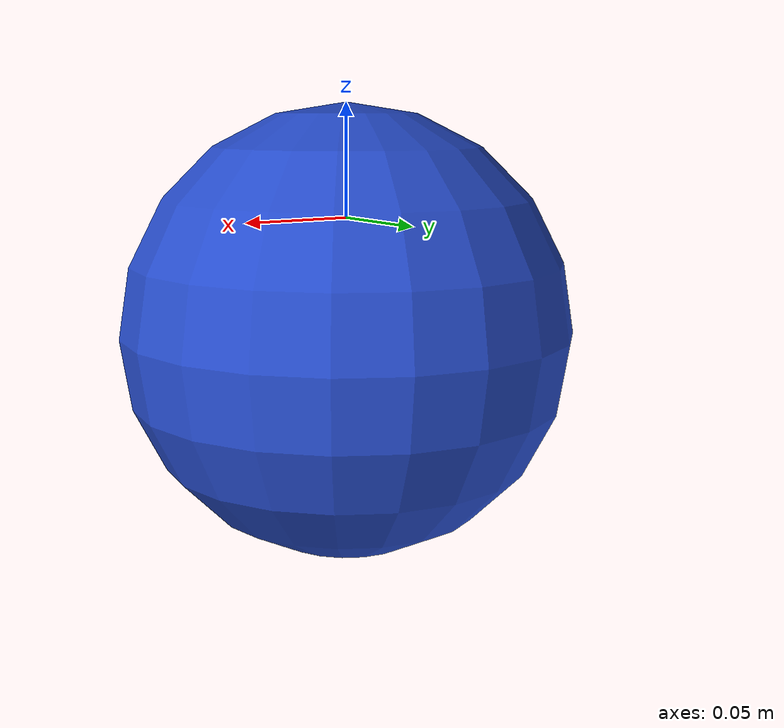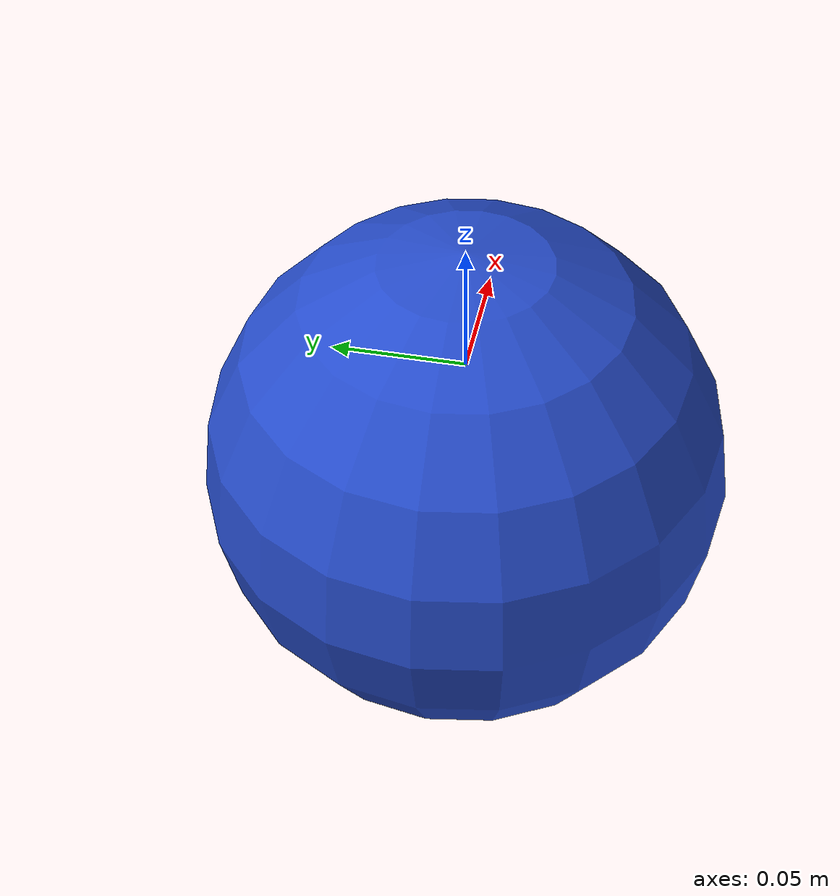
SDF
<?xml version="1.0"?>

<sdf version='1.4'>
	<model name="target">
		<link name="target_base_link">
			<visual name="target_base_link_visual">
				<pose>0 0 -0.05 0 0 0</pose>
				<material>
					<script><name>Gazebo/Blue</name></script>
				</material>
				<geometry>
					<sphere>
						<radius>0.1</radius>
					</sphere>
				</geometry>
			</visual>
			<collision name="target_base_link_collision">
				<pose>0 0 -0.05 0 0 0</pose>
				<geometry>
					<sphere>
						<radius>0.1</radius>
					</sphere>
				</geometry>
			</collision>
			<inertial>
				<mass value="0.0001" />
				<inertia ixx="0.00002" ixy="0.0" ixz="0.0" iyy="0.00002" iyz="0.0" izz="0.00002" />
			</inertial>
		</link>

		<plugin filename="librotors_gazebo_odometry_plugin.so" name="target_odometry">
			<linkName>target_base_link</linkName>
			<robotNamespace>/target</robotNamespace>
			<poseTopic>pose</poseTopic>
			<poseWithCovarianceTopic>pose_with_covariance</poseWithCovarianceTopic>
			<positionTopic>position</positionTopic>
			<transformTopic>transform</transformTopic>
			<odometryTopic>odometry</odometryTopic>
			<parentFrameId>world</parentFrameId> <!-- Use the scoped link name here. e.g. Model::link. -->
			<childFrameId>target</childFrameId>
			<measurementDivisor>1</measurementDivisor> <!-- only every (seq % measurementDivisor) == 0 measurement is published [int] -->
			<measurementDelay>0</measurementDelay> <!-- time that measurement gets held back before it's published in [simulation cycles (int)] -->
			<unknownDelay>0</unknownDelay> <!-- additional delay, that just gets added to the timestamp [s] -->
			<noiseNormalPosition>0 0 0</noiseNormalPosition> <!-- standard deviation of additive white gaussian noise [m] -->
			<noiseNormalQuaternion>0 0 0</noiseNormalQuaternion> <!-- standard deviation white gaussian noise [rad]: q_m = q*quaternionFromSmallAngleApproximation(noiseNormalQ) -->
			<noiseNormalLinearVelocity>0 0  0</noiseNormalLinearVelocity> <!-- standard deviation of additive white gaussian noise [m/s] -->
			<noiseNormalAngularVelocity>0 0  0</noiseNormalAngularVelocity> <!-- standard deviation of additive white gaussian noise [rad/s] -->
			<noiseUniformPosition>0 0  0</noiseUniformPosition> <!-- symmetric bounds of uniform noise [m] -->
			<noiseUniformQuaternion>0 0  0</noiseUniformQuaternion> <!-- symmetric bounds of uniform noise [rad], computation see above -->
			<noiseUniformLinearVelocity>0 0  0</noiseUniformLinearVelocity> <!-- symmetric bounds of uniform noise [m/s] -->
			<noiseUniformAngularVelocity>0 0  0</noiseUniformAngularVelocity> <!-- symmetric bounds of uniform noise [rad/s] -->
		</plugin>
		<plugin name="target_trajectory" filename="libtarget_trajectory.so">
			<link>target_base_link</link>
			<initial_position x="1" y="0" z="0" />
			<speed>0.0</speed>
			<amplitude>0.5</amplitude>
			<frequency>0.4</frequency>
			<delay>10</delay>
		</plugin>
	</model>
</sdf>
